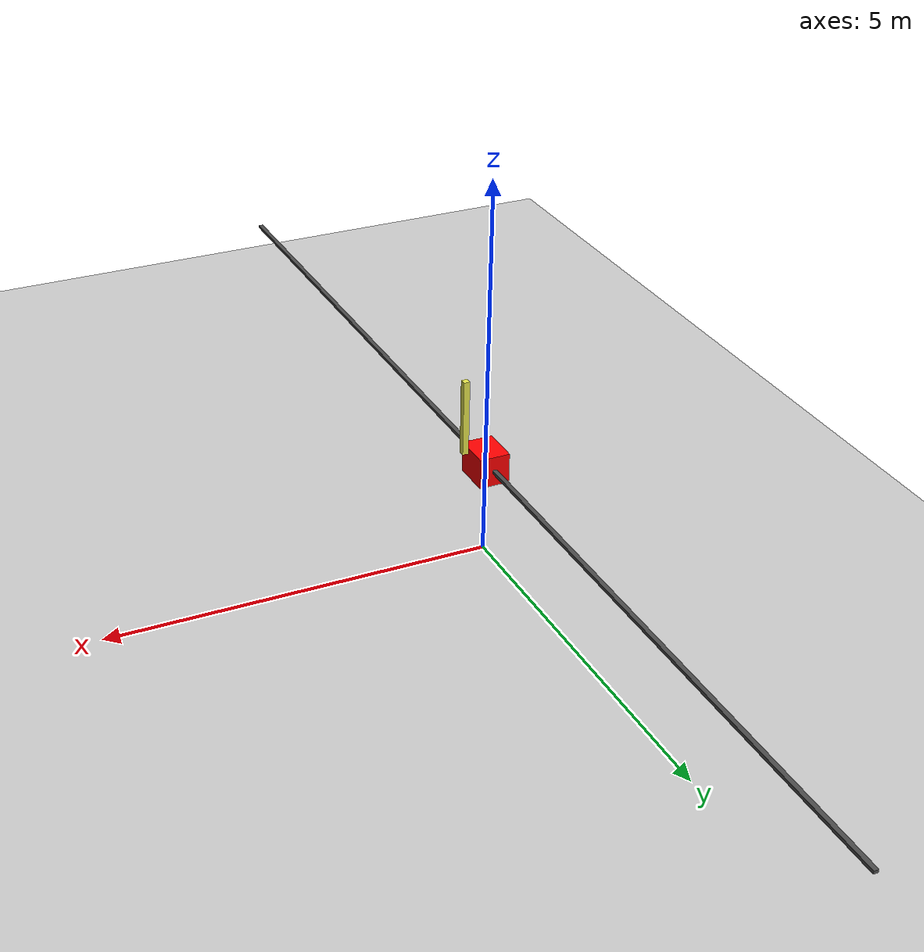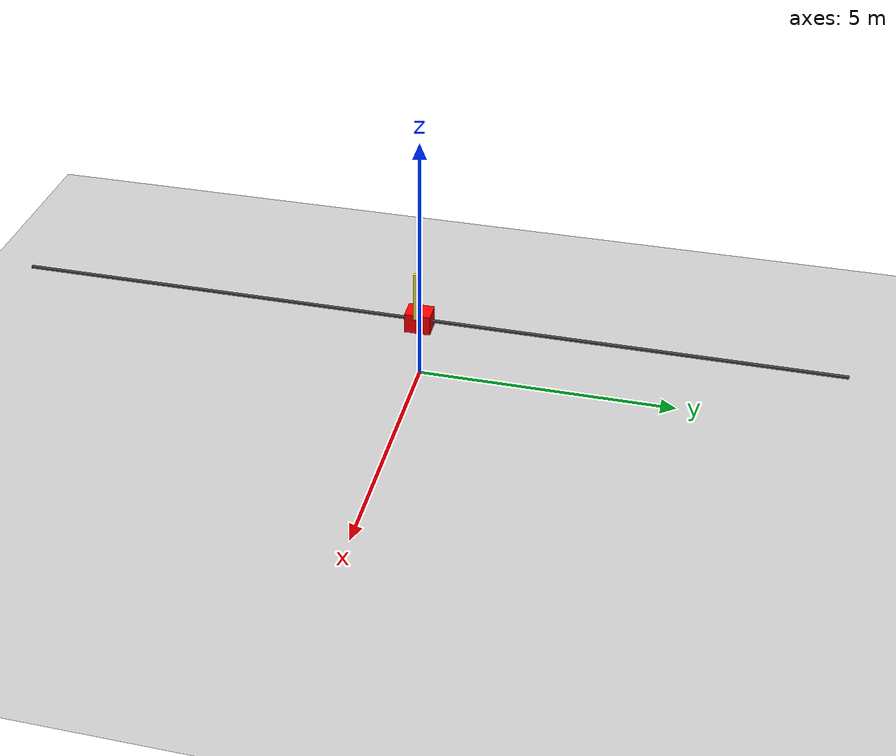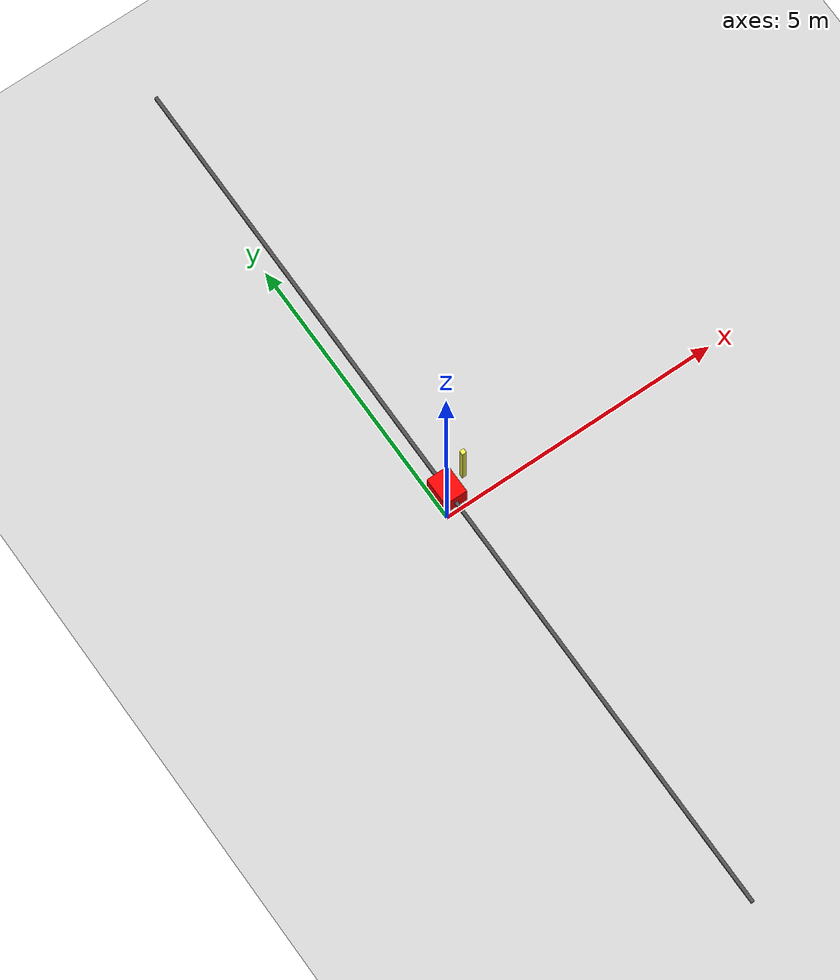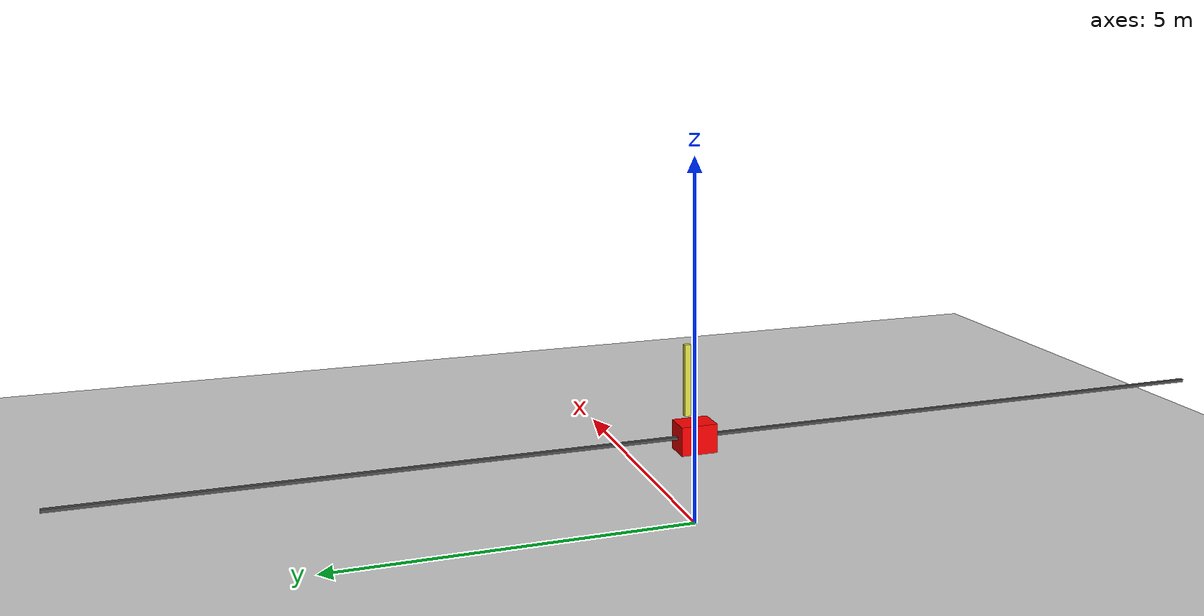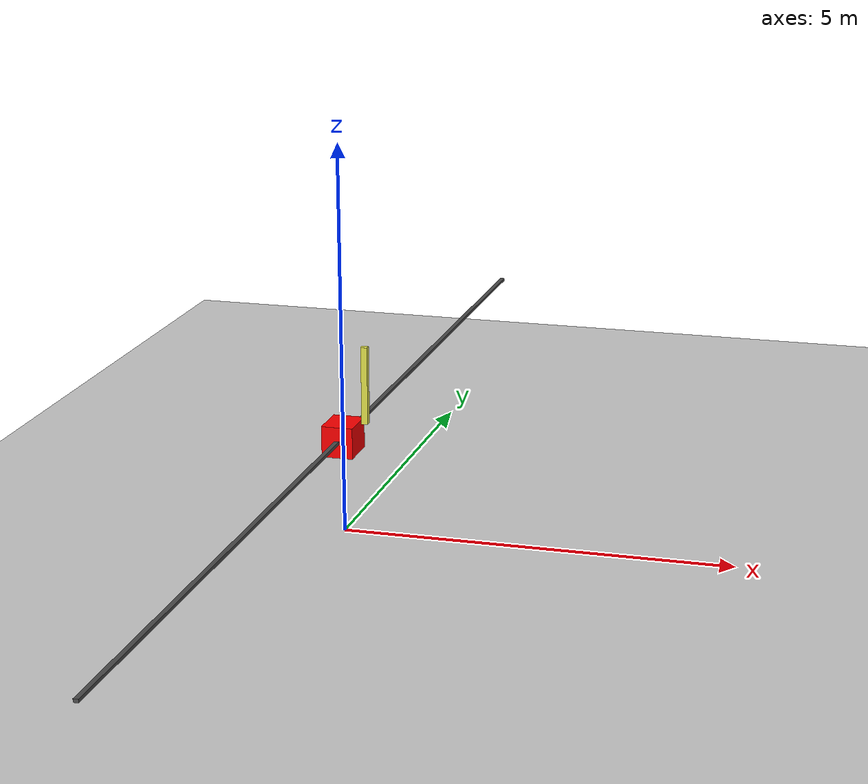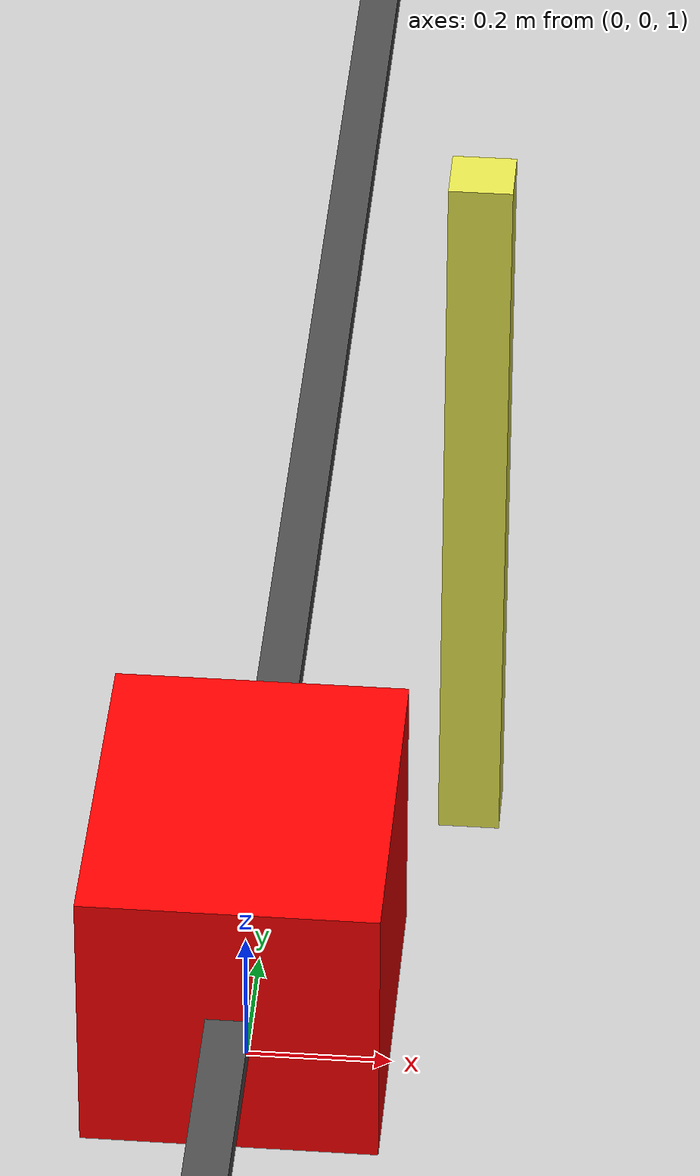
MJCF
<mujoco model="cartpole_two_carts">
  <compiler angle="radian" coordinate="local"/>

  <!-- 基本物理设置 -->
  <option timestep="0.01" gravity="0 0 -9.81"/>

  <!-- 给关节/执行器预留 user 数据 -->
  <size nuser_jnt="1" nuser_actuator="1"/>

  <!-- 资源：棋盘格地面材质 -->
  <asset>
    <!-- 一个 2D 棋盘格纹理 -->
    <texture name="tex_checker" type="2d" builtin="checker"
             width="512" height="512" rgb1="0.8 0.8 0.8" rgb2="0.2 0.2 0.2"/>
    <!-- 把这个纹理贴到平面上 -->
    <material name="mat_ground" texture="tex_checker" texrepeat="10 10" reflectance="0.1"/>
  </asset>

  <default>
    <geom type="box" rgba="0.8 0.8 0.8 1" contype="1" conaffinity="1"/>
    <joint limited="true" damping="1e-3"/>
  </default>

  <worldbody>

    <!-- 一盏光，稍微斜着照下来 -->
    <light name="top_light" pos="0 0 3" dir="0 0 -1" diffuse="1 1 1" specular="0.3 0.3 0.3"
           cutoff="45" exponent="3" />

    <!-- 棋盘格地面 -->
    <geom name="ground" type="plane" pos="0 0 0" size="10 10 0.1" material="mat_ground" />

    <!-- 轨道 -->
    <geom name="rail" pos="0 0 1.25" size="0.03 8 0.02" type="box" rgba="0.3 0.3 0.3 1" friction="0.1 0.1 0.1"/>

    <!-- cart1：沿 y 滑 -->
    <body name="cart1" pos="0 0 1.25">
      <joint name="slider_to_cart1" type="slide" axis="0 1 0"
             range="-8.0 8.0" damping="0.01"/>
      <!-- 你定好的尺寸：0.2, 0.25, 0.2 -->
      <geom name="cart1_geom" size="0.2 0.25 0.2" type="box" rgba="1 0 0 1" mass="1" friction="0.1 0.1 0.1"/>

      <!-- cart：再沿 y 滑，这是“弹簧”那节 -->
      <!-- 你这里 pos="0 0.4 0" 我照抄；再加关节 qpos=2.4 就会是在这个基础上拉 2.4 -->
      <body name="cart" pos="0 0 0">
        <!-- 只能平移不能转 -->
        <joint name="cart_to_cart1" type="slide" axis="0 1 0"
               range="-8.0 8.0"
               stiffness="160"
               springref="2.4"
               damping="0.5"/>
        <!-- 同样的尺寸 -->
        <geom name="cart2_geom" size="0.2 0.25 0.2" type="box" rgba="0.9 0.4 0.2 1" mass="1" friction="0.1 0.1 0.1"/>

        <!-- 单独开一层给杆转，cart 本身不转 -->
        <body name="pole_base" pos="0.3 0 0.2">
          <!-- 杆绕 x 轴 -->
          <joint name="cart_to_pole" type="hinge"
                 axis="1 0 0"
                 range="-3.1416 3.1416"
                 damping="0.001" />

          <!-- 杆本体 -->
          <body name="pole" pos="0 0 0">
            <!-- 你说的 scale: x=0.04, y=0.06, z=1
                 在 MuJoCo 里 box 的 size 是 半长，所以我照你上一版的写法保留成细长的盒子 -->
            <geom name="pole_geom"
                  type="box"
                  fromto="0 0 0  0 0 1.0"
                  size="0.04 0.06 1.0"
                  rgba="0.9 0.9 0.3 1"
                  mass="1"
                  friction="0.1 0.1 0.1"/>
          </body>
        </body>
      </body>
    </body>
  </worldbody>

  <actuator>
    <!-- 给 cart1 的 slider 施力；你原来 gear=400 我也保留 -->
    <motor name="cart1_actuator" joint="slider_to_cart1"
           ctrllimited="true" ctrlrange="-1.0 1.0" gear="400"/>
  </actuator>
</mujoco>
